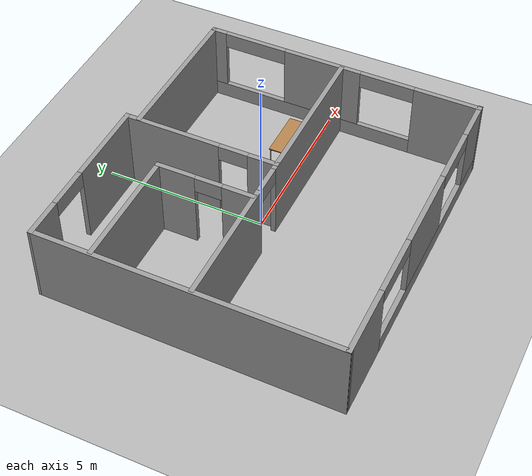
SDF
<sdf version="1.9">
 <world name="default">
  <gravity>0 0 -9.8</gravity>
  <magnetic_field>6e-06 2.3e-05 -4.2e-05</magnetic_field>
  <atmosphere type="adiabatic"/>
  <physics type="ode">
   <max_step_size>0.001</max_step_size>
   <real_time_factor>1</real_time_factor>
   <real_time_update_rate>1000</real_time_update_rate>
  </physics>
  <scene><ambient>0.4 0.4 0.4 1</ambient><background>0.7 0.7 0.7 1</background><shadows>true</shadows></scene>
  <model name="Model">
   <pose>-0.095572 -0.20054 0 0 -0 0</pose>
   <link name="Wall_15">
    <pose>0.226743 2.16049 0 0 0 -1.57157</pose>
    <visual name="Wall_15_Visual_0">
     <pose>-0.922792 0 1.25 0 -0 0</pose>
     <geometry><box><size>3.03442 0.15 2.5</size></box></geometry>
     <material>
      <script><uri>file://media/materials/scripts/gazebo.material</uri><name>Gazebo/Grey</name></script>
      <ambient>1 1 1 1</ambient>
     </material>
     <meta><layer>0</layer></meta>
    </visual>
    <collision name="Wall_15_Collision_0">
     <geometry><box><size>3.03442 0.15 2.5</size></box></geometry>
     <pose>-0.922792 0 1.25 0 -0 0</pose>
    </collision>
    <visual name="Wall_15_Visual_1">
     <pose>1.96721 0 1.25 0 -0 0</pose>
     <geometry><box><size>0.945583 0.15 2.5</size></box></geometry>
     <material>
      <script><uri>file://media/materials/scripts/gazebo.material</uri><name>Gazebo/Grey</name></script>
      <ambient>1 1 1 1</ambient>
     </material>
     <meta><layer>0</layer></meta>
    </visual>
    <collision name="Wall_15_Collision_1">
     <geometry><box><size>0.945583 0.15 2.5</size></box></geometry>
     <pose>1.96721 0 1.25 0 -0 0</pose>
    </collision>
    <visual name="Wall_15_Visual_2">
     <pose>1.04442 0 2.25 0 -0 0</pose>
     <geometry><box><size>0.9 0.15 0.5</size></box></geometry>
     <material>
      <script><uri>file://media/materials/scripts/gazebo.material</uri><name>Gazebo/Grey</name></script>
      <ambient>1 1 1 1</ambient>
     </material>
     <meta><layer>0</layer></meta>
    </visual>
    <collision name="Wall_15_Collision_2">
     <geometry><box><size>0.9 0.15 0.5</size></box></geometry>
     <pose>1.04442 0 2.25 0 -0 0</pose>
    </collision>
    <inertial>
     <mass>1</mass>
     <inertia><ixx>1</ixx><ixy>0</ixy><ixz>0</ixz><iyy>1</iyy><iyz>0</iyz><izz>1</izz></inertia>
    </inertial>
   </link>
   <link name="Wall_17">
    <pose>0.002254 -0.209259 0 0 -0 0</pose>
    <visual name="Wall_17_Visual_0">
     <pose>-2.89458 0 1.25 0 -0 0</pose>
     <geometry><box><size>3.96084 0.15 2.5</size></box></geometry>
     <material>
      <script><uri>file://media/materials/scripts/gazebo.material</uri><name>Gazebo/Grey</name></script>
      <ambient>1 1 1 1</ambient>
     </material>
     <meta><layer>0</layer></meta>
    </visual>
    <collision name="Wall_17_Collision_0">
     <geometry><box><size>3.96084 0.15 2.5</size></box></geometry>
     <pose>-2.89458 0 1.25 0 -0 0</pose>
    </collision>
    <visual name="Wall_17_Visual_1">
     <pose>2.44192 0 1.25 0 -0 0</pose>
     <geometry><box><size>4.86616 0.15 2.5</size></box></geometry>
     <material>
      <script><uri>file://media/materials/scripts/gazebo.material</uri><name>Gazebo/Grey</name></script>
      <ambient>1 1 1 1</ambient>
     </material>
     <meta><layer>0</layer></meta>
    </visual>
    <collision name="Wall_17_Collision_1">
     <geometry><box><size>4.86616 0.15 2.5</size></box></geometry>
     <pose>2.44192 0 1.25 0 -0 0</pose>
    </collision>
    <visual name="Wall_17_Visual_2">
     <pose>-0.452661 0 2.25 0 -0 0</pose>
     <geometry><box><size>0.923 0.15 0.5</size></box></geometry>
     <material>
      <script><uri>file://media/materials/scripts/gazebo.material</uri><name>Gazebo/Grey</name></script>
      <ambient>1 1 1 1</ambient>
     </material>
     <meta><layer>0</layer></meta>
    </visual>
    <collision name="Wall_17_Collision_2">
     <geometry><box><size>0.923 0.15 0.5</size></box></geometry>
     <pose>-0.452661 0 2.25 0 -0 0</pose>
    </collision>
    <inertial>
     <mass>1</mass>
     <inertia><ixx>1</ixx><ixy>0</ixy><ixz>0</ixz><iyy>1</iyy><iyz>0</iyz><izz>1</izz></inertia>
    </inertial>
   </link>
   <link name="Wall_21">
    <collision name="Wall_21_Collision">
     <geometry><box><size>3.75 0.15 2.5</size></box></geometry>
     <pose>0 0 1.25 0 -0 0</pose>
    </collision>
    <visual name="Wall_21_Visual">
     <pose>0 0 1.25 0 -0 0</pose>
     <geometry><box><size>3.75 0.15 2.5</size></box></geometry>
     <material>
      <script><uri>file://media/materials/scripts/gazebo.material</uri><name>Gazebo/Grey</name></script>
      <ambient>1 1 1 1</ambient>
     </material>
     <meta><layer>0</layer></meta>
    </visual>
    <pose>-2.97692 2.74812 0 0 -0 0</pose>
    <inertial>
     <mass>1</mass>
     <inertia><ixx>1</ixx><ixy>0</ixy><ixz>0</ixz><iyy>1</iyy><iyz>0</iyz><izz>1</izz></inertia>
    </inertial>
   </link>
   <link name="Wall_23">
    <collision name="Wall_23_Collision">
     <geometry><box><size>9.19333 0.15 2.5</size></box></geometry>
     <pose>0 0 1.25 0 -0 0</pose>
    </collision>
    <visual name="Wall_23_Visual">
     <pose>0 0 1.25 0 -0 0</pose>
     <geometry><box><size>9.19333 0.15 2.5</size></box></geometry>
     <material>
      <script><uri>file://media/materials/scripts/gazebo.material</uri><name>Gazebo/Grey</name></script>
      <ambient>1 1 1 1</ambient>
     </material>
     <meta><layer>0</layer></meta>
    </visual>
    <pose>-4.85203 0.01298 0 0 0 -1.57747</pose>
    <inertial>
     <mass>1</mass>
     <inertia><ixx>1</ixx><ixy>0</ixy><ixz>0</ixz><iyy>1</iyy><iyz>0</iyz><izz>1</izz></inertia>
    </inertial>
   </link>
   <link name="Wall_24">
    <pose>-0.000237 -4.52164 0 0 0 -0.002673</pose>
    <visual name="Wall_24_Visual_0">
     <pose>-3.85936 0 1.25 0 -0 0</pose>
     <geometry><box><size>2.155 0.15 2.5</size></box></geometry>
     <material>
      <script><uri>file://media/materials/scripts/gazebo.material</uri><name>Gazebo/Grey</name></script>
      <ambient>1 1 1 1</ambient>
     </material>
     <meta><layer>0</layer></meta>
    </visual>
    <collision name="Wall_24_Collision_0">
     <geometry><box><size>2.155 0.15 2.5</size></box></geometry>
     <pose>-3.85936 0 1.25 0 -0 0</pose>
    </collision>
    <visual name="Wall_24_Visual_1">
     <pose>1.0775 0 0.25 0 -0 0</pose>
     <geometry><box><size>7.71873 0.15 0.5</size></box></geometry>
     <material>
      <script><uri>file://media/materials/scripts/gazebo.material</uri><name>Gazebo/Grey</name></script>
      <ambient>1 1 1 1</ambient>
     </material>
     <meta><layer>0</layer></meta>
    </visual>
    <collision name="Wall_24_Collision_1">
     <geometry><box><size>7.71873 0.15 0.5</size></box></geometry>
     <pose>1.0775 0 0.25 0 -0 0</pose>
    </collision>
    <visual name="Wall_24_Visual_2">
     <pose>0.424132 0 1.5 0 -0 0</pose>
     <geometry><box><size>2.61199 0.15 2</size></box></geometry>
     <material>
      <script><uri>file://media/materials/scripts/gazebo.material</uri><name>Gazebo/Grey</name></script>
      <ambient>1 1 1 1</ambient>
     </material>
     <meta><layer>0</layer></meta>
    </visual>
    <collision name="Wall_24_Collision_2">
     <geometry><box><size>2.61199 0.15 2</size></box></geometry>
     <pose>0.424132 0 1.5 0 -0 0</pose>
    </collision>
    <visual name="Wall_24_Visual_3">
     <pose>4.2665 0 1.5 0 -0 0</pose>
     <geometry><box><size>1.34074 0.15 2</size></box></geometry>
     <material>
      <script><uri>file://media/materials/scripts/gazebo.material</uri><name>Gazebo/Grey</name></script>
      <ambient>1 1 1 1</ambient>
     </material>
     <meta><layer>0</layer></meta>
    </visual>
    <collision name="Wall_24_Collision_3">
     <geometry><box><size>1.34074 0.15 2</size></box></geometry>
     <pose>4.2665 0 1.5 0 -0 0</pose>
    </collision>
    <visual name="Wall_24_Visual_4">
     <pose>-1.83186 0 2.25 0 -0 0</pose>
     <geometry><box><size>1.9 0.15 0.5</size></box></geometry>
     <material>
      <script><uri>file://media/materials/scripts/gazebo.material</uri><name>Gazebo/Grey</name></script>
      <ambient>1 1 1 1</ambient>
     </material>
     <meta><layer>0</layer></meta>
    </visual>
    <collision name="Wall_24_Collision_4">
     <geometry><box><size>1.9 0.15 0.5</size></box></geometry>
     <pose>-1.83186 0 2.25 0 -0 0</pose>
    </collision>
    <visual name="Wall_24_Visual_5">
     <pose>2.66313 0 2.25 0 -0 0</pose>
     <geometry><box><size>1.866 0.15 0.5</size></box></geometry>
     <material>
      <script><uri>file://media/materials/scripts/gazebo.material</uri><name>Gazebo/Grey</name></script>
      <ambient>1 1 1 1</ambient>
     </material>
     <meta><layer>0</layer></meta>
    </visual>
    <collision name="Wall_24_Collision_5">
     <geometry><box><size>1.866 0.15 0.5</size></box></geometry>
     <pose>2.66313 0 2.25 0 -0 0</pose>
    </collision>
    <inertial>
     <mass>1</mass>
     <inertia><ixx>1</ixx><ixy>0</ixy><ixz>0</ixz><iyy>1</iyy><iyz>0</iyz><izz>1</izz></inertia>
    </inertial>
   </link>
   <link name="Wall_25">
    <pose>4.86161 -0.224579 0 0 -0 1.56613</pose>
    <visual name="Wall_25_Visual_0">
     <pose>-3.34665 0 1.25 0 -0 0</pose>
     <geometry><box><size>2.07702 0.15 2.5</size></box></geometry>
     <material>
      <script><uri>file://media/materials/scripts/gazebo.material</uri><name>Gazebo/Grey</name></script>
      <ambient>1 1 1 1</ambient>
     </material>
     <meta><layer>0</layer></meta>
    </visual>
    <collision name="Wall_25_Collision_0">
     <geometry><box><size>2.07702 0.15 2.5</size></box></geometry>
     <pose>-3.34665 0 1.25 0 -0 0</pose>
    </collision>
    <visual name="Wall_25_Visual_1">
     <pose>1.03851 0 0.25 0 -0 0</pose>
     <geometry><box><size>6.69331 0.15 0.5</size></box></geometry>
     <material>
      <script><uri>file://media/materials/scripts/gazebo.material</uri><name>Gazebo/Grey</name></script>
      <ambient>1 1 1 1</ambient>
     </material>
     <meta><layer>0</layer></meta>
    </visual>
    <collision name="Wall_25_Collision_1">
     <geometry><box><size>6.69331 0.15 0.5</size></box></geometry>
     <pose>1.03851 0 0.25 0 -0 0</pose>
    </collision>
    <visual name="Wall_25_Visual_2">
     <pose>0.635605 0 1.5 0 -0 0</pose>
     <geometry><box><size>2.4775 0.15 2</size></box></geometry>
     <material>
      <script><uri>file://media/materials/scripts/gazebo.material</uri><name>Gazebo/Grey</name></script>
      <ambient>1 1 1 1</ambient>
     </material>
     <meta><layer>0</layer></meta>
    </visual>
    <collision name="Wall_25_Collision_2">
     <geometry><box><size>2.4775 0.15 2</size></box></geometry>
     <pose>0.635605 0 1.5 0 -0 0</pose>
    </collision>
    <visual name="Wall_25_Visual_3">
     <pose>4.12426 0 1.5 0 -0 0</pose>
     <geometry><box><size>0.521808 0.15 2</size></box></geometry>
     <material>
      <script><uri>file://media/materials/scripts/gazebo.material</uri><name>Gazebo/Grey</name></script>
      <ambient>1 1 1 1</ambient>
     </material>
     <meta><layer>0</layer></meta>
    </visual>
    <collision name="Wall_25_Collision_3">
     <geometry><box><size>0.521808 0.15 2</size></box></geometry>
     <pose>4.12426 0 1.5 0 -0 0</pose>
    </collision>
    <visual name="Wall_25_Visual_4">
     <pose>-1.45565 0 2.25 0 -0 0</pose>
     <geometry><box><size>1.705 0.15 0.5</size></box></geometry>
     <material>
      <script><uri>file://media/materials/scripts/gazebo.material</uri><name>Gazebo/Grey</name></script>
      <ambient>1 1 1 1</ambient>
     </material>
     <meta><layer>0</layer></meta>
    </visual>
    <collision name="Wall_25_Collision_4">
     <geometry><box><size>1.705 0.15 0.5</size></box></geometry>
     <pose>-1.45565 0 2.25 0 -0 0</pose>
    </collision>
    <visual name="Wall_25_Visual_5">
     <pose>2.86885 0 2.25 0 -0 0</pose>
     <geometry><box><size>1.989 0.15 0.5</size></box></geometry>
     <material>
      <script><uri>file://media/materials/scripts/gazebo.material</uri><name>Gazebo/Grey</name></script>
      <ambient>1 1 1 1</ambient>
     </material>
     <meta><layer>0</layer></meta>
    </visual>
    <collision name="Wall_25_Collision_5">
     <geometry><box><size>1.989 0.15 0.5</size></box></geometry>
     <pose>2.86885 0 2.25 0 -0 0</pose>
    </collision>
    <inertial>
     <mass>1</mass>
     <inertia><ixx>1</ixx><ixy>0</ixy><ixz>0</ixz><iyy>1</iyy><iyz>0</iyz><izz>1</izz></inertia>
    </inertial>
   </link>
   <link name="Wall_27">
    <collision name="Wall_27_Collision">
     <geometry><box><size>4.78085 0.15 2.5</size></box></geometry>
     <pose>0 0 1.25 0 -0 0</pose>
    </collision>
    <visual name="Wall_27_Visual">
     <pose>0 0 1.25 0 -0 0</pose>
     <geometry><box><size>4.78085 0.15 2.5</size></box></geometry>
     <material>
      <script><uri>file://media/materials/scripts/gazebo.material</uri><name>Gazebo/Grey</name></script>
      <ambient>1 1 1 1</ambient>
     </material>
     <meta><layer>0</layer></meta>
    </visual>
    <pose>2.5665 4.11565 0 0 -0 3.12856</pose>
    <inertial>
     <mass>1</mass>
     <inertia><ixx>1</ixx><ixy>0</ixy><ixz>0</ixz><iyy>1</iyy><iyz>0</iyz><izz>1</izz></inertia>
    </inertial>
   </link>
   <link name="Wall_30">
    <pose>-2.29686 4.5346 0 0 -0 0</pose>
    <visual name="Wall_30_Visual_0">
     <pose>-1.98663 0 1.25 0 -0 0</pose>
     <geometry><box><size>1.22674 0.15 2.5</size></box></geometry>
     <material>
      <script><uri>file://media/materials/scripts/gazebo.material</uri><name>Gazebo/Grey</name></script>
      <ambient>1 1 1 1</ambient>
     </material>
     <meta><layer>0</layer></meta>
    </visual>
    <collision name="Wall_30_Collision_0">
     <geometry><box><size>1.22674 0.15 2.5</size></box></geometry>
     <pose>-1.98663 0 1.25 0 -0 0</pose>
    </collision>
    <visual name="Wall_30_Visual_1">
     <pose>1.25576 0 1.25 0 -0 0</pose>
     <geometry><box><size>2.68848 0.15 2.5</size></box></geometry>
     <material>
      <script><uri>file://media/materials/scripts/gazebo.material</uri><name>Gazebo/Grey</name></script>
      <ambient>1 1 1 1</ambient>
     </material>
     <meta><layer>0</layer></meta>
    </visual>
    <collision name="Wall_30_Collision_1">
     <geometry><box><size>2.68848 0.15 2.5</size></box></geometry>
     <pose>1.25576 0 1.25 0 -0 0</pose>
    </collision>
    <visual name="Wall_30_Visual_2">
     <pose>-0.730868 0 2.25 0 -0 0</pose>
     <geometry><box><size>1.28478 0.15 0.5</size></box></geometry>
     <material>
      <script><uri>file://media/materials/scripts/gazebo.material</uri><name>Gazebo/Grey</name></script>
      <ambient>1 1 1 1</ambient>
     </material>
     <meta><layer>0</layer></meta>
    </visual>
    <collision name="Wall_30_Collision_2">
     <geometry><box><size>1.28478 0.15 0.5</size></box></geometry>
     <pose>-0.730868 0 2.25 0 -0 0</pose>
    </collision>
    <inertial>
     <mass>1</mass>
     <inertia><ixx>1</ixx><ixy>0</ixy><ixz>0</ixz><iyy>1</iyy><iyz>0</iyz><izz>1</izz></inertia>
    </inertial>
   </link>
   <link name="Wall_9">
    <pose>-1.18041 1.26957 0 0 0 -1.5708</pose>
    <visual name="Wall_9_Visual_0">
     <pose>-0.936039 0 1.25 0 -0 0</pose>
     <geometry><box><size>1.22792 0.15 2.5</size></box></geometry>
     <material>
      <script><uri>file://media/materials/scripts/gazebo.material</uri><name>Gazebo/Grey</name></script>
      <ambient>1 1 1 1</ambient>
     </material>
     <meta><layer>0</layer></meta>
    </visual>
    <collision name="Wall_9_Collision_0">
     <geometry><box><size>1.22792 0.15 2.5</size></box></geometry>
     <pose>-0.936039 0 1.25 0 -0 0</pose>
    </collision>
    <visual name="Wall_9_Visual_1">
     <pose>1.02994 0 1.25 0 -0 0</pose>
     <geometry><box><size>1.04013 0.15 2.5</size></box></geometry>
     <material>
      <script><uri>file://media/materials/scripts/gazebo.material</uri><name>Gazebo/Grey</name></script>
      <ambient>1 1 1 1</ambient>
     </material>
     <meta><layer>0</layer></meta>
    </visual>
    <collision name="Wall_9_Collision_1">
     <geometry><box><size>1.04013 0.15 2.5</size></box></geometry>
     <pose>1.02994 0 1.25 0 -0 0</pose>
    </collision>
    <visual name="Wall_9_Visual_2">
     <pose>0.093896 0 2.25 0 -0 0</pose>
     <geometry><box><size>0.831947 0.15 0.5</size></box></geometry>
     <material>
      <script><uri>file://media/materials/scripts/gazebo.material</uri><name>Gazebo/Grey</name></script>
      <ambient>1 1 1 1</ambient>
     </material>
     <meta><layer>0</layer></meta>
    </visual>
    <collision name="Wall_9_Collision_2">
     <geometry><box><size>0.831947 0.15 0.5</size></box></geometry>
     <pose>0.093896 0 2.25 0 -0 0</pose>
    </collision>
    <inertial>
     <mass>1</mass>
     <inertia><ixx>1</ixx><ixy>0</ixy><ixz>0</ixz><iyy>1</iyy><iyz>0</iyz><izz>1</izz></inertia>
    </inertial>
   </link>
   <static>true</static>
  </model>
  <model name="ground_plane">
   <static>true</static>
   <link name="link">
    <collision name="collision">
     <geometry><plane><normal>0 0 1</normal><size>100 100</size></plane></geometry>
     <surface><friction><ode><mu>100</mu><mu2>50</mu2></ode></friction></surface>
    </collision>
    <visual name="visual">
     <cast_shadows>false</cast_shadows>
     <geometry><plane><normal>0 0 1</normal><size>100 100</size></plane></geometry>
     <material>
      <ambient>0.3 0.3 0.3 1</ambient>
      <diffuse>0.7 0.7 0.7 1</diffuse>
      <specular>0.01 0.01 0.01 1</specular>
     </material>
    </visual>
    <inertial>
     <mass>1</mass>
     <inertia><ixx>1</ixx><ixy>0</ixy><ixz>0</ixz><iyy>1</iyy><iyz>0</iyz><izz>1</izz></inertia>
    </inertial>
   </link>
   <pose>-4.72678 -11.7723 0 0 -0 0</pose>
  </model>
  <model name="Table">
   <static>true</static>
   <link name="link">
    <collision name="surface">
     <pose>0 0 1.0 0 0 0</pose>
     <geometry><box><size>1.5 0.8 0.03</size></box></geometry>
     <surface><friction><ode><mu>0.59999999999999998</mu><mu2>0.59999999999999998</mu2></ode></friction></surface>
    </collision>
    <visual name="visual1">
     <pose>0 0 1.0 0 0 0</pose>
     <geometry><box><size>1.5 0.8 0.03</size></box></geometry>
     <material>
      <diffuse>1 1 1 1</diffuse>
      <script><uri>file://media/materials/scripts/gazebo.material</uri><name>Gazebo/Wood</name></script>
      <pbr>
       <metal>
        <albedo_map>https://fuel.gazebosim.org/1.0/openrobotics/models/table/4/files/Table_Diffuse.jpg</albedo_map>
       </metal>
      </pbr>
     </material>
    </visual>
    <collision name="front_left_leg">
     <pose>0.68 0.38 0.5 0 0 0</pose>
     <geometry><cylinder><radius>0.02</radius><length>1</length></cylinder></geometry>
    </collision>
    <visual name="front_left_leg">
     <pose>0.68 0.38 0.5 0 0 0</pose>
     <geometry><cylinder><radius>0.02</radius><length>1</length></cylinder></geometry>
     <material>
      <diffuse>0.5 0.5 0.5 1</diffuse>
      <script><uri>file://media/materials/scripts/gazebo.material</uri><name>Gazebo/Grey</name></script>
     </material>
    </visual>
    <collision name="front_right_leg">
     <pose>0.68 -0.38 0.5 0 0 0</pose>
     <geometry><cylinder><radius>0.02</radius><length>1</length></cylinder></geometry>
    </collision>
    <visual name="front_right_leg">
     <pose>0.68 -0.38 0.5 0 0 0</pose>
     <geometry><cylinder><radius>0.02</radius><length>1</length></cylinder></geometry>
     <material>
      <diffuse>0.5 0.5 0.5 1</diffuse>
      <script><uri>file://media/materials/scripts/gazebo.material</uri><name>Gazebo/Grey</name></script>
     </material>
    </visual>
    <collision name="back_right_leg">
     <pose>-0.68 -0.38 0.5 0 0 0</pose>
     <geometry><cylinder><radius>0.02</radius><length>1</length></cylinder></geometry>
    </collision>
    <visual name="back_right_leg">
     <pose>-0.68 -0.38 0.5 0 0 0</pose>
     <geometry><cylinder><radius>0.02</radius><length>1</length></cylinder></geometry>
     <material>
      <diffuse>0.5 0.5 0.5 1</diffuse>
      <script><uri>file://media/materials/scripts/gazebo.material</uri><name>Gazebo/Grey</name></script>
     </material>
    </visual>
    <collision name="back_left_leg">
     <pose>-0.68 0.38 0.5 0 0 0</pose>
     <geometry><cylinder><radius>0.02</radius><length>1</length></cylinder></geometry>
    </collision>
    <visual name="back_left_leg">
     <pose>-0.68 0.38 0.5 0 0 0</pose>
     <geometry><cylinder><radius>0.02</radius><length>1</length></cylinder></geometry>
     <material>
      <diffuse>0.5 0.5 0.5 1</diffuse>
      <script><uri>file://media/materials/scripts/gazebo.material</uri><name>Gazebo/Grey</name></script>
     </material>
    </visual>
    <inertial>
     <mass>1</mass>
     <inertia><ixx>1</ixx><ixy>0</ixy><ixz>0</ixz><iyy>1</iyy><iyz>0</iyz><izz>1</izz></inertia>
    </inertial>
   </link>
   <pose>2.78444 0.312551 0 0 -0 0</pose>
  </model>
  <light name="sun" type="directional">
   <pose>-7.25763 -14.9902 10 0 -0 0</pose>
   <intensity>1</intensity>
   <direction>-0.5 0.1 -0.9</direction>
   <diffuse>0.8 0.8 0.8 1</diffuse>
   <specular>0.2 0.2 0.2 1</specular>
   <attenuation>
    <range>1000</range>
    <linear>0.01</linear>
    <constant>0.90000000000000002</constant>
    <quadratic>0.001</quadratic>
   </attenuation>
   <spot><inner_angle>0</inner_angle><outer_angle>0</outer_angle><falloff>0</falloff></spot>
  </light>
 </world>
</sdf>
